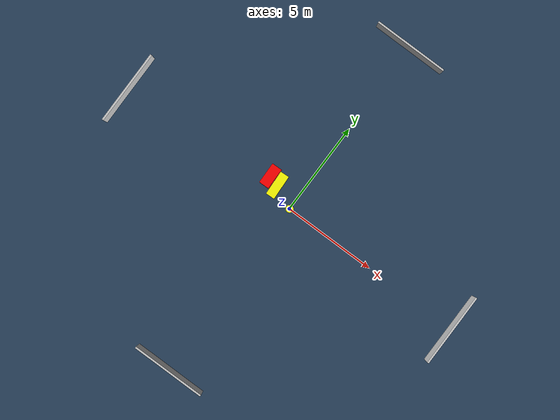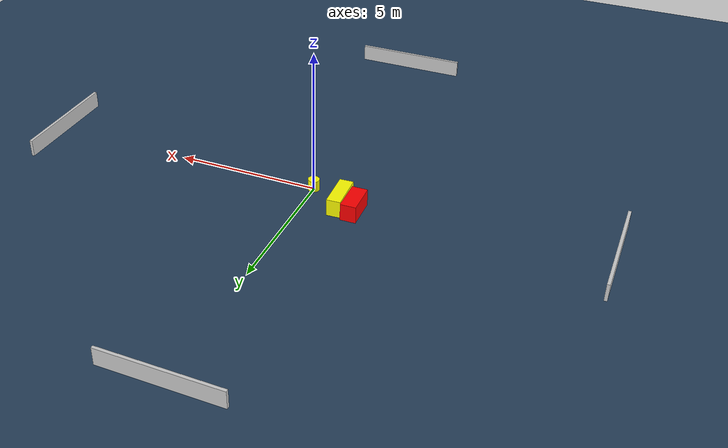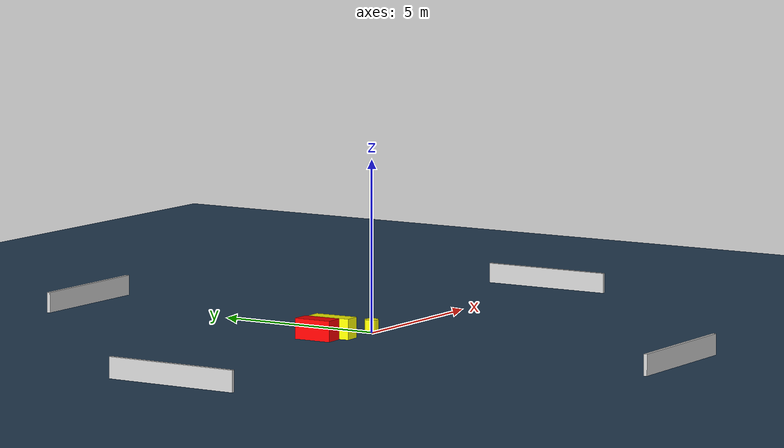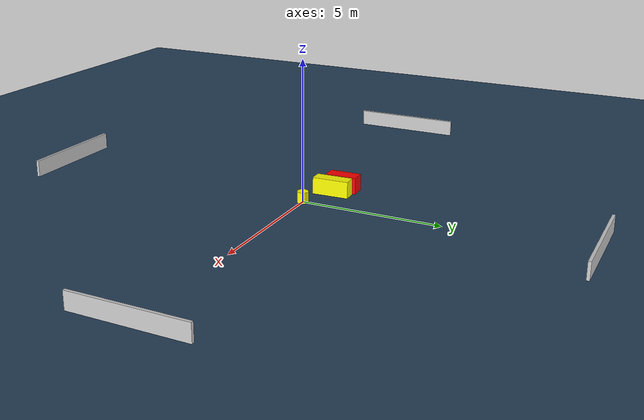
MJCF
<?xml version="1.0" ?>
<mujoco model="generated_environment">
  <option timestep="0.01" integrator="RK4" cone="elliptic"/>
  <default>
    <geom density="1"/>
  </default>
  <asset>
    <texture builtin="gradient" height="3072" name="skybox" rgb1="0.3 0.5 0.7" rgb2="0 0 0" type="skybox" width="512"/>
    <texture builtin="checker" height="300" name="groundplane" rgb1="0.2 0.3 0.4" rgb2="0.1 0.2 0.3" type="2d" width="300"/>
    <material name="groundplane" reflectance="0.2" texrepeat="5 5" texture="groundplane"/>
  </asset>
  <worldbody>
    <light dir="0 0 -1" directional="true" pos="0 0 1.5"/>
    <geom condim="3" friction="0.5 0.005 0.001" material="groundplane" name="floor" pos="0 0 0" size="0 0 0.05" type="plane"/>
    <body name="walls">
      <geom name="wall_1" condim="4" pos="-10.0 0.0 0.3" rgba="0.800000011920929 0.800000011920929 0.800000011920929 1.0" size="0.05 2.0 0.3" type="box"/>
      <geom name="wall_2" condim="4" pos="10.0 0.0 0.3" rgba="0.800000011920929 0.800000011920929 0.800000011920929 1.0" size="0.05 2.0 0.3" type="box"/>
      <geom name="wall_3" condim="4" pos="0.0 -10.0 0.3" rgba="0.800000011920929 0.800000011920929 0.800000011920929 1.0" size="2.0 0.05 0.3" type="box"/>
      <geom name="wall_4" condim="4" pos="0.0 10.0 0.3" rgba="0.800000011920929 0.800000011920929 0.800000011920929 1.0" size="2.0 0.05 0.3" type="box"/>
    </body>
    <body name="robot">
      <joint name="joint_x" type="slide" pos="0 0 0" axis="1 0 0"/>
      <joint name="joint_y" type="slide" pos="0 0 0" axis="0 1 0"/>
      <geom name="robot" type="cylinder" pos="0.0 0.0 0.2" size="0.2 0.2 0.0" mass="5.0" friction="1.0 0.005 0.0001" condim="4" rgba="1.0 1.0 0.0 1.0"/>
    </body>
    <body name="obstacle_1_movable">
      <geom name="obstacle_1_movable" condim="4" pos="-1.1796617360402708 0.5738149327366368 0.3" euler="0 0 2.5210906425788515" friction="0.0 0.005 0.001" rgba="1.0 1.0 0.0 1.0" size="0.23560001782541223 0.6526034074996785 0.3" type="box" mass="0.1"/>
      <joint type="free"/>
    </body>
    <body name="obstacle_2_static">
      <geom name="obstacle_2_static" condim="4" pos="-1.7308126186814672 0.7365178655831056 0.3" euler="0 0 271.3179664407427" friction="0.0 0.005 0.001" rgba="1.0 0.0 0.0 1.0" size="0.5645588296525712 0.26776066350767846 0.3" type="box"/>
    </body>
  </worldbody>
  <actuator>
    <motor name="actuator_x" joint="joint_x" gear="1" ctrlrange="-1 1"/>
    <motor name="actuator_y" joint="joint_y" gear="1" ctrlrange="-1 1"/>
  </actuator>
</mujoco>
